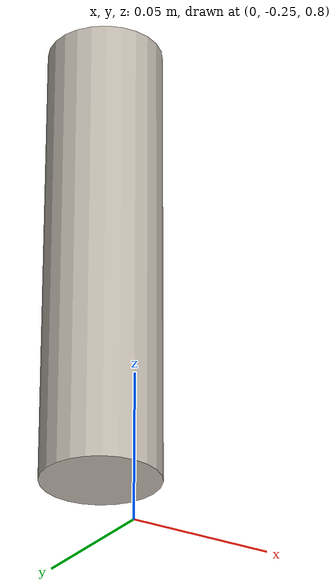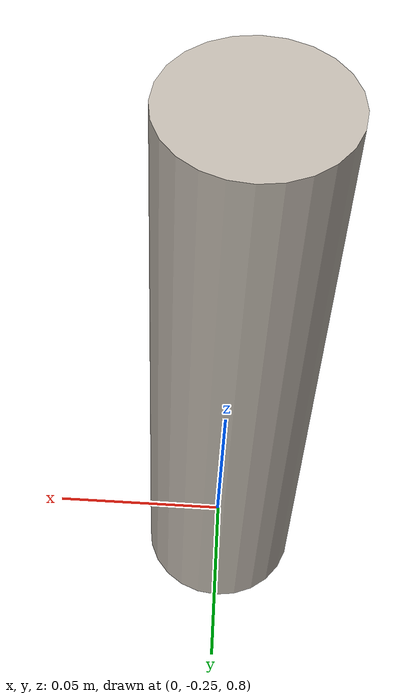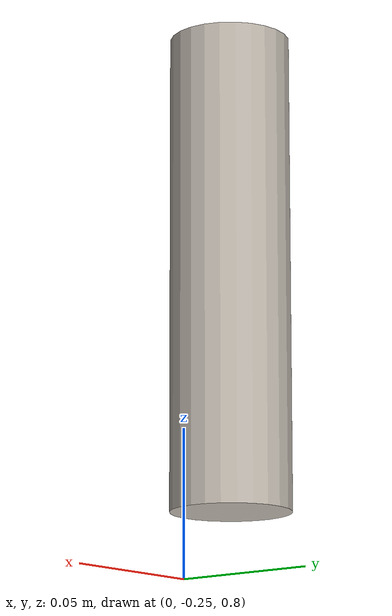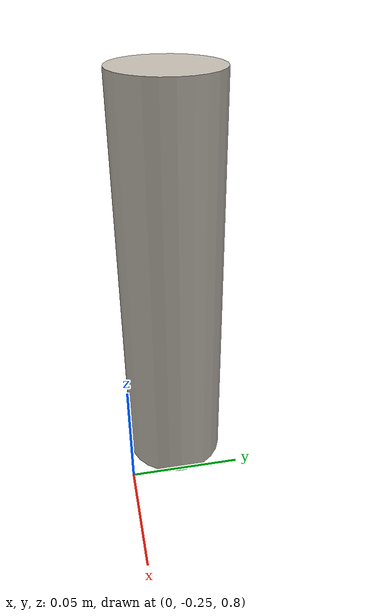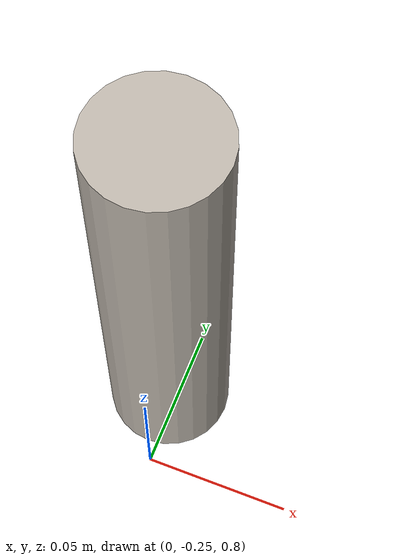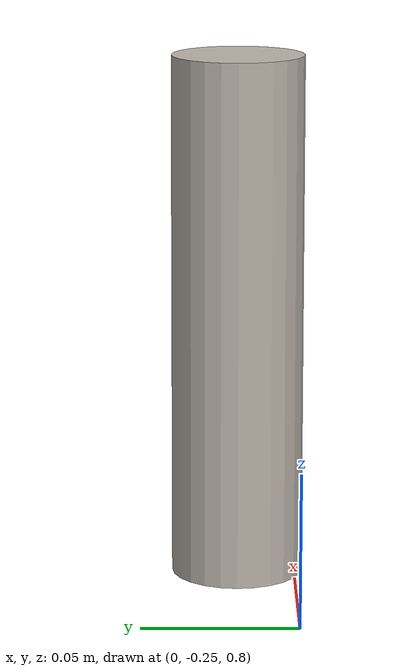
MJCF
<mujoco model="ingranaggio">
  <asset>
    <texture file="../textures/metal.png" name="tex-metal"/>
    <material name="metal" reflectance="0.7" texrepeat="1 1" texture="tex-metal" texuniform="true"/>
  </asset>
  <worldbody>
    <body>
      <body name="collision" pos="0 -0.23 0.9" quat="1 0 0 0">
        <geom pos="0 0 0" type="cylinder"  size="0.02 0.08" solimp="0.998 0.998 0.001" solref="0.001 1" density="1500" friction="0.95 0.3 0.1" material="metal" group="1" condim="4"/>
      </body>
    </body>
  </worldbody>
</mujoco>
